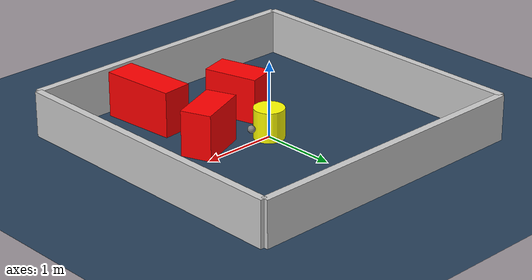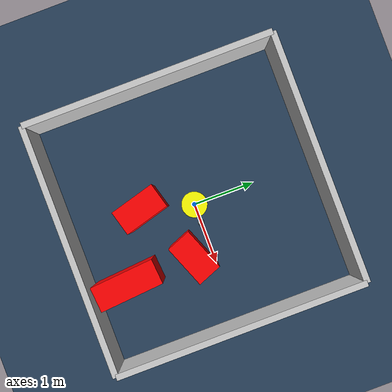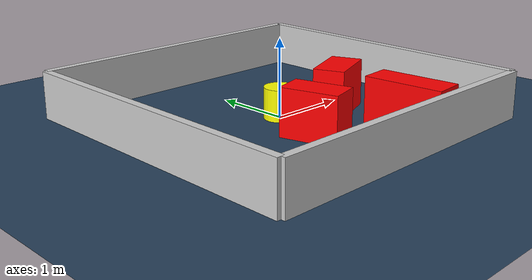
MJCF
<?xml version="1.0" ?>
<mujoco model="generated_environment">
  <option timestep="0.01" integrator="RK4" cone="elliptic"/>
  <default>
    <geom density="1"/>
  </default>
  <asset>
    <texture builtin="gradient" height="3072" rgb1="0.3 0.5 0.7" rgb2="0 0 0" type="skybox" width="512"/>
    <texture builtin="checker" height="300" mark="edge" markrgb="0.8 0.8 0.8" name="groundplane" rgb1="0.2 0.3 0.4" rgb2="0.1 0.2 0.3" type="2d" width="300"/>
    <material name="groundplane" reflectance="0.2" texrepeat="5 5" texture="groundplane" texuniform="true"/>
    <material name="robot" rgba="0.0 1.0 0.0 1"/>
  </asset>
  <worldbody>
    <light dir="0 0 -1" directional="true" pos="0 0 1.5"/>
    <geom condim="4" friction="1.0 0.005 0.001" material="groundplane" name="floor" size="0 0 0.05" type="plane"/>
    <body name="walls">
      <geom name="wall_1" condim="4" pos="-2.0 0.0 0.3" rgba="0.800000011920929 0.800000011920929 0.800000011920929 1.0" size="0.05 2.0 0.3" type="box"/>
      <geom name="wall_2" condim="4" pos="2.0 0.0 0.3" rgba="0.800000011920929 0.800000011920929 0.800000011920929 1.0" size="0.05 2.0 0.3" type="box"/>
      <geom name="wall_3" condim="4" pos="0.0 -2.0 0.3" rgba="0.800000011920929 0.800000011920929 0.800000011920929 1.0" size="2.0 0.05 0.3" type="box"/>
      <geom name="wall_4" condim="4" pos="0.0 2.0 0.3" rgba="0.800000011920929 0.800000011920929 0.800000011920929 1.0" size="2.0 0.05 0.3" type="box"/>
    </body>
    <body name="robot">
      <joint name="joint_x" type="slide" pos="0 0 0" axis="1 0 0"/>
      <joint name="joint_y" type="slide" pos="0 0 0" axis="0 1 0"/>
      <geom name="robot" type="sphere" pos="0.3 0.0 0.2" size="0.05" mass="5." friction="1.0 0.005 0.0001" condim="4" rgba="0.5 0.5 0.5 1.0"/>
      <site name="sensor_ball"/>
    </body>
    <body name="obstacle_movable_1">
      <geom name="obstacle_movable_1" condim="4" pos="0.0 0.0 0.2" euler="0 0 0.0" friction="1.0 0.005 0.001" rgba="1.0 1.0 0.0 1.0" size="0.2 0.2 0.0" type="cylinder" mass="0.1"/>
      <joint type="free"/>
    </body>
    <body name="obstacle_2_static">
      <geom name="obstacle_2_static" condim="4" pos="-0.22056159426318533 -0.7923197301309624 0.3" euler="0 0 285.4551773567538" friction="1.0 0.005 0.001" rgba="1 0 0 1" size="0.36306789715592697 0.2 0.3" type="box"/>
    </body>
    <body name="obstacle_3_static">
      <geom name="obstacle_3_static" condim="4" pos="0.77531774490546 -1.372407683831666 0.3" euler="0 0 94.69178938863845" friction="1.0 0.005 0.001" rgba="1 0 0 1" size="0.5044339362376549 0.2 0.3" type="box"/>
    </body>
    <body name="obstacle_4_static">
      <geom name="obstacle_4_static" condim="4" pos="0.7431392116838933 -0.28490941444188267 0.3" euler="0 0 201.55234860032252" friction="1.0 0.005 0.001" rgba="1 0 0 1" size="0.3514107910660128 0.2 0.3" type="box"/>
    </body>
  </worldbody>
  <actuator>
    <motor name="actuator_x" joint="joint_x" gear="1" ctrlrange="-1 1"/>
    <motor name="actuator_y" joint="joint_y" gear="1" ctrlrange="-1 1"/>
  </actuator>
</mujoco>
